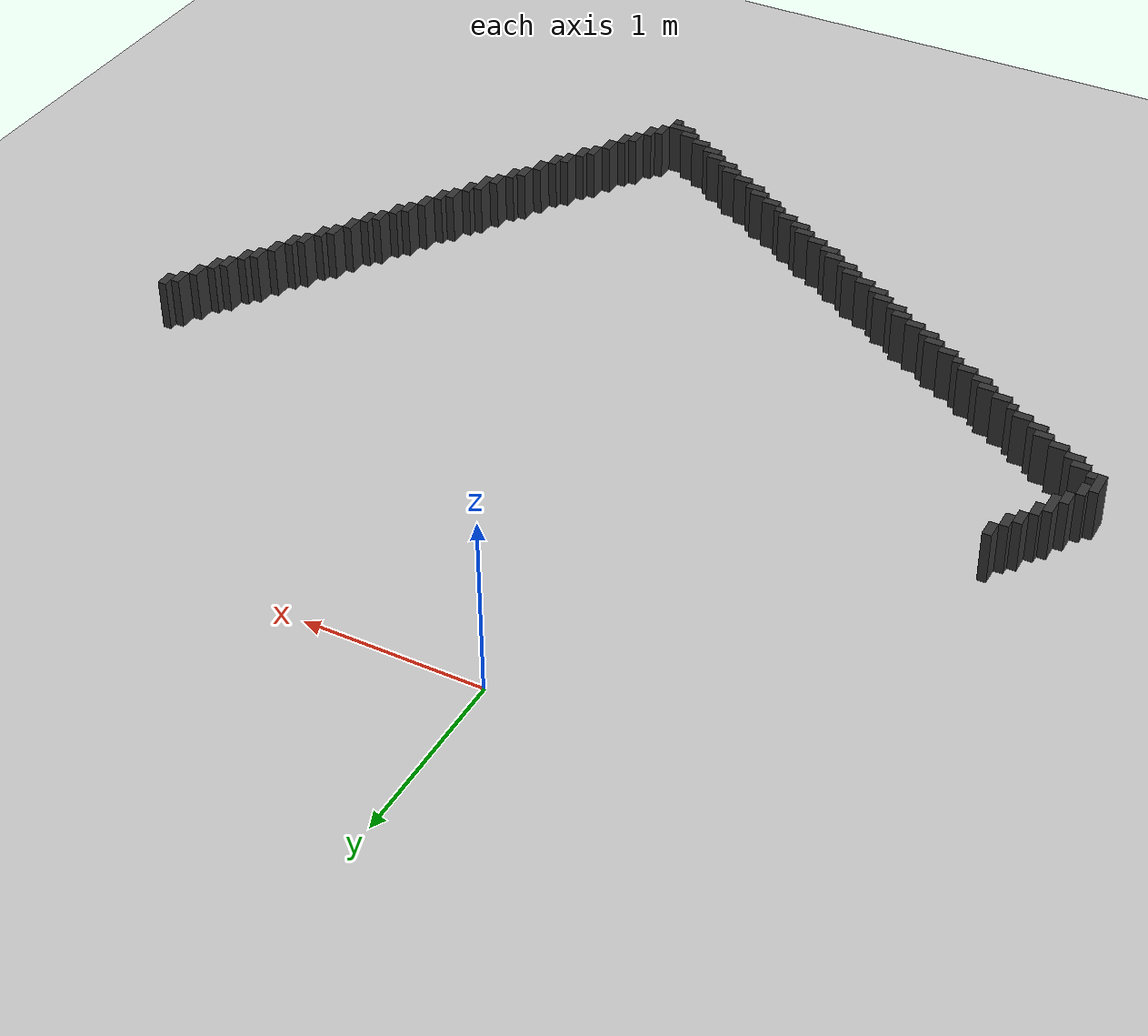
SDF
<sdf version="1.7">
 <world name="mapa_mundo">
  <model name="ground_plane">
   <static>true</static>
   <link name="link">
    <collision name="collision">
     <geometry><plane><normal>0 0 1</normal><size>10 10</size></plane></geometry>
     <surface><friction><ode><mu>100</mu><mu2>50</mu2></ode></friction></surface>
    </collision>
    <visual name="visual">
     <geometry><plane><normal>0 0 1</normal><size>10 10</size></plane></geometry>
     <material>
      <ambient>0.8 0.8 0.8 1</ambient>
      <diffuse>0.8 0.8 0.8 1</diffuse>
      <specular>0.8 0.8 0.8 1</specular>
     </material>
    </visual>
   </link>
  </model>
  <model name="wall_257">
   <static>true</static>
   <link name="link">
    <collision name="collision"><geometry><box><size>0.05 0.1 0.3</size></box></geometry></collision>
    <visual name="visual">
     <geometry><box><size>0.05 0.1 0.3</size></box></geometry>
     <material><ambient>0.2 0.2 0.2 1</ambient><diffuse>0.2 0.2 0.2 1</diffuse></material>
    </visual>
    <pose>3.0250000000000004 -1.75 0.15 0 0 0</pose>
   </link>
  </model>
  <model name="wall_258">
   <static>true</static>
   <link name="link">
    <collision name="collision"><geometry><box><size>0.05 0.1 0.3</size></box></geometry></collision>
    <visual name="visual">
     <geometry><box><size>0.05 0.1 0.3</size></box></geometry>
     <material><ambient>0.2 0.2 0.2 1</ambient><diffuse>0.2 0.2 0.2 1</diffuse></material>
    </visual>
    <pose>2.975 -1.8 0.15 0 0 0</pose>
   </link>
  </model>
  <model name="wall_259">
   <static>true</static>
   <link name="link">
    <collision name="collision"><geometry><box><size>0.05 0.1 0.3</size></box></geometry></collision>
    <visual name="visual">
     <geometry><box><size>0.05 0.1 0.3</size></box></geometry>
     <material><ambient>0.2 0.2 0.2 1</ambient><diffuse>0.2 0.2 0.2 1</diffuse></material>
    </visual>
    <pose>-1.7750000000000001 -1.85 0.15 0 0 0</pose>
   </link>
  </model>
  <model name="wall_260">
   <static>true</static>
   <link name="link">
    <collision name="collision"><geometry><box><size>0.05 0.1 0.3</size></box></geometry></collision>
    <visual name="visual">
     <geometry><box><size>0.05 0.1 0.3</size></box></geometry>
     <material><ambient>0.2 0.2 0.2 1</ambient><diffuse>0.2 0.2 0.2 1</diffuse></material>
    </visual>
    <pose>2.9250000000000003 -1.9000000000000001 0.15 0 0 0</pose>
   </link>
  </model>
  <model name="wall_261">
   <static>true</static>
   <link name="link">
    <collision name="collision"><geometry><box><size>0.05 0.1 0.3</size></box></geometry></collision>
    <visual name="visual">
     <geometry><box><size>0.05 0.1 0.3</size></box></geometry>
     <material><ambient>0.2 0.2 0.2 1</ambient><diffuse>0.2 0.2 0.2 1</diffuse></material>
    </visual>
    <pose>-1.8250000000000002 -1.9500000000000002 0.15 0 0 0</pose>
   </link>
  </model>
  <model name="wall_262">
   <static>true</static>
   <link name="link">
    <collision name="collision"><geometry><box><size>0.05 0.1 0.3</size></box></geometry></collision>
    <visual name="visual">
     <geometry><box><size>0.05 0.1 0.3</size></box></geometry>
     <material><ambient>0.2 0.2 0.2 1</ambient><diffuse>0.2 0.2 0.2 1</diffuse></material>
    </visual>
    <pose>-1.875 -2.0 0.15 0 0 0</pose>
   </link>
  </model>
  <model name="wall_263">
   <static>true</static>
   <link name="link">
    <collision name="collision"><geometry><box><size>0.05 0.1 0.3</size></box></geometry></collision>
    <visual name="visual">
     <geometry><box><size>0.05 0.1 0.3</size></box></geometry>
     <material><ambient>0.2 0.2 0.2 1</ambient><diffuse>0.2 0.2 0.2 1</diffuse></material>
    </visual>
    <pose>2.875 -2.0 0.15 0 0 0</pose>
   </link>
  </model>
  <model name="wall_264">
   <static>true</static>
   <link name="link">
    <collision name="collision"><geometry><box><size>0.05 0.1 0.3</size></box></geometry></collision>
    <visual name="visual">
     <geometry><box><size>0.05 0.1 0.3</size></box></geometry>
     <material><ambient>0.2 0.2 0.2 1</ambient><diffuse>0.2 0.2 0.2 1</diffuse></material>
    </visual>
    <pose>2.825 -2.0500000000000003 0.15 0 0 0</pose>
   </link>
  </model>
  <model name="wall_265">
   <static>true</static>
   <link name="link">
    <collision name="collision"><geometry><box><size>0.05 0.1 0.3</size></box></geometry></collision>
    <visual name="visual">
     <geometry><box><size>0.05 0.1 0.3</size></box></geometry>
     <material><ambient>0.2 0.2 0.2 1</ambient><diffuse>0.2 0.2 0.2 1</diffuse></material>
    </visual>
    <pose>-1.925 -2.1 0.15 0 0 0</pose>
   </link>
  </model>
  <model name="wall_266">
   <static>true</static>
   <link name="link">
    <collision name="collision">
     <geometry><box><size>0.05 0.15000000000000002 0.3</size></box></geometry>
    </collision>
    <visual name="visual">
     <geometry><box><size>0.05 0.15000000000000002 0.3</size></box></geometry>
     <material><ambient>0.2 0.2 0.2 1</ambient><diffuse>0.2 0.2 0.2 1</diffuse></material>
    </visual>
    <pose>-1.975 -2.1750000000000003 0.15 0 0 0</pose>
   </link>
  </model>
  <model name="wall_267">
   <static>true</static>
   <link name="link">
    <collision name="collision"><geometry><box><size>0.05 0.1 0.3</size></box></geometry></collision>
    <visual name="visual">
     <geometry><box><size>0.05 0.1 0.3</size></box></geometry>
     <material><ambient>0.2 0.2 0.2 1</ambient><diffuse>0.2 0.2 0.2 1</diffuse></material>
    </visual>
    <pose>2.7750000000000004 -2.15 0.15 0 0 0</pose>
   </link>
  </model>
  <model name="wall_268">
   <static>true</static>
   <link name="link">
    <collision name="collision"><geometry><box><size>0.05 0.1 0.3</size></box></geometry></collision>
    <visual name="visual">
     <geometry><box><size>0.05 0.1 0.3</size></box></geometry>
     <material><ambient>0.2 0.2 0.2 1</ambient><diffuse>0.2 0.2 0.2 1</diffuse></material>
    </visual>
    <pose>2.725 -2.2 0.15 0 0 0</pose>
   </link>
  </model>
  <model name="wall_269">
   <static>true</static>
   <link name="link">
    <collision name="collision"><geometry><box><size>0.05 0.1 0.3</size></box></geometry></collision>
    <visual name="visual">
     <geometry><box><size>0.05 0.1 0.3</size></box></geometry>
     <material><ambient>0.2 0.2 0.2 1</ambient><diffuse>0.2 0.2 0.2 1</diffuse></material>
    </visual>
    <pose>-2.025 -2.25 0.15 0 0 0</pose>
   </link>
  </model>
  <model name="wall_270">
   <static>true</static>
   <link name="link">
    <collision name="collision"><geometry><box><size>0.05 0.1 0.3</size></box></geometry></collision>
    <visual name="visual">
     <geometry><box><size>0.05 0.1 0.3</size></box></geometry>
     <material><ambient>0.2 0.2 0.2 1</ambient><diffuse>0.2 0.2 0.2 1</diffuse></material>
    </visual>
    <pose>2.6750000000000003 -2.3000000000000003 0.15 0 0 0</pose>
   </link>
  </model>
  <model name="wall_271">
   <static>true</static>
   <link name="link">
    <collision name="collision"><geometry><box><size>0.05 0.1 0.3</size></box></geometry></collision>
    <visual name="visual">
     <geometry><box><size>0.05 0.1 0.3</size></box></geometry>
     <material><ambient>0.2 0.2 0.2 1</ambient><diffuse>0.2 0.2 0.2 1</diffuse></material>
    </visual>
    <pose>-2.075 -2.35 0.15 0 0 0</pose>
   </link>
  </model>
  <model name="wall_272">
   <static>true</static>
   <link name="link">
    <collision name="collision">
     <geometry><box><size>0.05 0.15000000000000002 0.3</size></box></geometry>
    </collision>
    <visual name="visual">
     <geometry><box><size>0.05 0.15000000000000002 0.3</size></box></geometry>
     <material><ambient>0.2 0.2 0.2 1</ambient><diffuse>0.2 0.2 0.2 1</diffuse></material>
    </visual>
    <pose>-2.125 -2.4250000000000003 0.15 0 0 0</pose>
   </link>
  </model>
  <model name="wall_273">
   <static>true</static>
   <link name="link">
    <collision name="collision"><geometry><box><size>0.05 0.1 0.3</size></box></geometry></collision>
    <visual name="visual">
     <geometry><box><size>0.05 0.1 0.3</size></box></geometry>
     <material><ambient>0.2 0.2 0.2 1</ambient><diffuse>0.2 0.2 0.2 1</diffuse></material>
    </visual>
    <pose>2.625 -2.4000000000000004 0.15 0 0 0</pose>
   </link>
  </model>
  <model name="wall_274">
   <static>true</static>
   <link name="link">
    <collision name="collision"><geometry><box><size>0.05 0.1 0.3</size></box></geometry></collision>
    <visual name="visual">
     <geometry><box><size>0.05 0.1 0.3</size></box></geometry>
     <material><ambient>0.2 0.2 0.2 1</ambient><diffuse>0.2 0.2 0.2 1</diffuse></material>
    </visual>
    <pose>2.575 -2.45 0.15 0 0 0</pose>
   </link>
  </model>
  <model name="wall_275">
   <static>true</static>
   <link name="link">
    <collision name="collision"><geometry><box><size>0.05 0.05 0.3</size></box></geometry></collision>
    <visual name="visual">
     <geometry><box><size>0.05 0.05 0.3</size></box></geometry>
     <material><ambient>0.2 0.2 0.2 1</ambient><diffuse>0.2 0.2 0.2 1</diffuse></material>
    </visual>
    <pose>-2.075 -2.475 0.15 0 0 0</pose>
   </link>
  </model>
  <model name="wall_276">
   <static>true</static>
   <link name="link">
    <collision name="collision"><geometry><box><size>0.1 0.05 0.3</size></box></geometry></collision>
    <visual name="visual">
     <geometry><box><size>0.1 0.05 0.3</size></box></geometry>
     <material><ambient>0.2 0.2 0.2 1</ambient><diffuse>0.2 0.2 0.2 1</diffuse></material>
    </visual>
    <pose>-2.0 -2.5250000000000004 0.15 0 0 0</pose>
   </link>
  </model>
  <model name="wall_277">
   <static>true</static>
   <link name="link">
    <collision name="collision"><geometry><box><size>0.05 0.1 0.3</size></box></geometry></collision>
    <visual name="visual">
     <geometry><box><size>0.05 0.1 0.3</size></box></geometry>
     <material><ambient>0.2 0.2 0.2 1</ambient><diffuse>0.2 0.2 0.2 1</diffuse></material>
    </visual>
    <pose>2.5250000000000004 -2.5500000000000003 0.15 0 0 0</pose>
   </link>
  </model>
  <model name="wall_278">
   <static>true</static>
   <link name="link">
    <collision name="collision"><geometry><box><size>0.1 0.05 0.3</size></box></geometry></collision>
    <visual name="visual">
     <geometry><box><size>0.1 0.05 0.3</size></box></geometry>
     <material><ambient>0.2 0.2 0.2 1</ambient><diffuse>0.2 0.2 0.2 1</diffuse></material>
    </visual>
    <pose>-1.9500000000000002 -2.575 0.15 0 0 0</pose>
   </link>
  </model>
  <model name="wall_279">
   <static>true</static>
   <link name="link">
    <collision name="collision"><geometry><box><size>0.05 0.1 0.3</size></box></geometry></collision>
    <visual name="visual">
     <geometry><box><size>0.05 0.1 0.3</size></box></geometry>
     <material><ambient>0.2 0.2 0.2 1</ambient><diffuse>0.2 0.2 0.2 1</diffuse></material>
    </visual>
    <pose>2.475 -2.6 0.15 0 0 0</pose>
   </link>
  </model>
  <model name="wall_280">
   <static>true</static>
   <link name="link">
    <collision name="collision"><geometry><box><size>0.1 0.05 0.3</size></box></geometry></collision>
    <visual name="visual">
     <geometry><box><size>0.1 0.05 0.3</size></box></geometry>
     <material><ambient>0.2 0.2 0.2 1</ambient><diffuse>0.2 0.2 0.2 1</diffuse></material>
    </visual>
    <pose>-1.85 -2.625 0.15 0 0 0</pose>
   </link>
  </model>
  <model name="wall_281">
   <static>true</static>
   <link name="link">
    <collision name="collision"><geometry><box><size>0.1 0.05 0.3</size></box></geometry></collision>
    <visual name="visual">
     <geometry><box><size>0.1 0.05 0.3</size></box></geometry>
     <material><ambient>0.2 0.2 0.2 1</ambient><diffuse>0.2 0.2 0.2 1</diffuse></material>
    </visual>
    <pose>-1.75 -2.6750000000000003 0.15 0 0 0</pose>
   </link>
  </model>
  <model name="wall_282">
   <static>true</static>
   <link name="link">
    <collision name="collision"><geometry><box><size>0.05 0.1 0.3</size></box></geometry></collision>
    <visual name="visual">
     <geometry><box><size>0.05 0.1 0.3</size></box></geometry>
     <material><ambient>0.2 0.2 0.2 1</ambient><diffuse>0.2 0.2 0.2 1</diffuse></material>
    </visual>
    <pose>2.4250000000000003 -2.7 0.15 0 0 0</pose>
   </link>
  </model>
  <model name="wall_283">
   <static>true</static>
   <link name="link">
    <collision name="collision"><geometry><box><size>0.1 0.05 0.3</size></box></geometry></collision>
    <visual name="visual">
     <geometry><box><size>0.1 0.05 0.3</size></box></geometry>
     <material><ambient>0.2 0.2 0.2 1</ambient><diffuse>0.2 0.2 0.2 1</diffuse></material>
    </visual>
    <pose>-1.7000000000000002 -2.725 0.15 0 0 0</pose>
   </link>
  </model>
  <model name="wall_284">
   <static>true</static>
   <link name="link">
    <collision name="collision"><geometry><box><size>0.1 0.05 0.3</size></box></geometry></collision>
    <visual name="visual">
     <geometry><box><size>0.1 0.05 0.3</size></box></geometry>
     <material><ambient>0.2 0.2 0.2 1</ambient><diffuse>0.2 0.2 0.2 1</diffuse></material>
    </visual>
    <pose>-1.6 -2.7750000000000004 0.15 0 0 0</pose>
   </link>
  </model>
  <model name="wall_285">
   <static>true</static>
   <link name="link">
    <collision name="collision"><geometry><box><size>0.05 0.1 0.3</size></box></geometry></collision>
    <visual name="visual">
     <geometry><box><size>0.05 0.1 0.3</size></box></geometry>
     <material><ambient>0.2 0.2 0.2 1</ambient><diffuse>0.2 0.2 0.2 1</diffuse></material>
    </visual>
    <pose>2.375 -2.8000000000000003 0.15 0 0 0</pose>
   </link>
  </model>
  <model name="wall_286">
   <static>true</static>
   <link name="link">
    <collision name="collision"><geometry><box><size>0.05 0.05 0.3</size></box></geometry></collision>
    <visual name="visual">
     <geometry><box><size>0.05 0.05 0.3</size></box></geometry>
     <material><ambient>0.2 0.2 0.2 1</ambient><diffuse>0.2 0.2 0.2 1</diffuse></material>
    </visual>
    <pose>-1.5250000000000001 -2.825 0.15 0 0 0</pose>
   </link>
  </model>
  <model name="wall_287">
   <static>true</static>
   <link name="link">
    <collision name="collision"><geometry><box><size>0.05 0.1 0.3</size></box></geometry></collision>
    <visual name="visual">
     <geometry><box><size>0.05 0.1 0.3</size></box></geometry>
     <material><ambient>0.2 0.2 0.2 1</ambient><diffuse>0.2 0.2 0.2 1</diffuse></material>
    </visual>
    <pose>2.325 -2.85 0.15 0 0 0</pose>
   </link>
  </model>
  <model name="wall_288">
   <static>true</static>
   <link name="link">
    <collision name="collision"><geometry><box><size>0.1 0.05 0.3</size></box></geometry></collision>
    <visual name="visual">
     <geometry><box><size>0.1 0.05 0.3</size></box></geometry>
     <material><ambient>0.2 0.2 0.2 1</ambient><diffuse>0.2 0.2 0.2 1</diffuse></material>
    </visual>
    <pose>-1.4500000000000002 -2.875 0.15 0 0 0</pose>
   </link>
  </model>
  <model name="wall_289">
   <static>true</static>
   <link name="link">
    <collision name="collision"><geometry><box><size>0.1 0.05 0.3</size></box></geometry></collision>
    <visual name="visual">
     <geometry><box><size>0.1 0.05 0.3</size></box></geometry>
     <material><ambient>0.2 0.2 0.2 1</ambient><diffuse>0.2 0.2 0.2 1</diffuse></material>
    </visual>
    <pose>-1.35 -2.9250000000000003 0.15 0 0 0</pose>
   </link>
  </model>
  <model name="wall_290">
   <static>true</static>
   <link name="link">
    <collision name="collision"><geometry><box><size>0.05 0.1 0.3</size></box></geometry></collision>
    <visual name="visual">
     <geometry><box><size>0.05 0.1 0.3</size></box></geometry>
     <material><ambient>0.2 0.2 0.2 1</ambient><diffuse>0.2 0.2 0.2 1</diffuse></material>
    </visual>
    <pose>2.275 -2.95 0.15 0 0 0</pose>
   </link>
  </model>
  <model name="wall_291">
   <static>true</static>
   <link name="link">
    <collision name="collision"><geometry><box><size>0.1 0.05 0.3</size></box></geometry></collision>
    <visual name="visual">
     <geometry><box><size>0.1 0.05 0.3</size></box></geometry>
     <material><ambient>0.2 0.2 0.2 1</ambient><diffuse>0.2 0.2 0.2 1</diffuse></material>
    </visual>
    <pose>-1.3 -2.975 0.15 0 0 0</pose>
   </link>
  </model>
  <model name="wall_292">
   <static>true</static>
   <link name="link">
    <collision name="collision"><geometry><box><size>0.05 0.1 0.3</size></box></geometry></collision>
    <visual name="visual">
     <geometry><box><size>0.05 0.1 0.3</size></box></geometry>
     <material><ambient>0.2 0.2 0.2 1</ambient><diffuse>0.2 0.2 0.2 1</diffuse></material>
    </visual>
    <pose>2.225 -3.0 0.15 0 0 0</pose>
   </link>
  </model>
  <model name="wall_293">
   <static>true</static>
   <link name="link">
    <collision name="collision"><geometry><box><size>0.1 0.05 0.3</size></box></geometry></collision>
    <visual name="visual">
     <geometry><box><size>0.1 0.05 0.3</size></box></geometry>
     <material><ambient>0.2 0.2 0.2 1</ambient><diffuse>0.2 0.2 0.2 1</diffuse></material>
    </visual>
    <pose>-1.2000000000000002 -3.0250000000000004 0.15 0 0 0</pose>
   </link>
  </model>
  <model name="wall_294">
   <static>true</static>
   <link name="link">
    <collision name="collision"><geometry><box><size>0.05 0.05 0.3</size></box></geometry></collision>
    <visual name="visual">
     <geometry><box><size>0.05 0.05 0.3</size></box></geometry>
     <material><ambient>0.2 0.2 0.2 1</ambient><diffuse>0.2 0.2 0.2 1</diffuse></material>
    </visual>
    <pose>-1.125 -3.075 0.15 0 0 0</pose>
   </link>
  </model>
  <model name="wall_295">
   <static>true</static>
   <link name="link">
    <collision name="collision"><geometry><box><size>0.05 0.1 0.3</size></box></geometry></collision>
    <visual name="visual">
     <geometry><box><size>0.05 0.1 0.3</size></box></geometry>
     <material><ambient>0.2 0.2 0.2 1</ambient><diffuse>0.2 0.2 0.2 1</diffuse></material>
    </visual>
    <pose>2.1750000000000003 -3.1 0.15 0 0 0</pose>
   </link>
  </model>
  <model name="wall_296">
   <static>true</static>
   <link name="link">
    <collision name="collision"><geometry><box><size>0.1 0.05 0.3</size></box></geometry></collision>
    <visual name="visual">
     <geometry><box><size>0.1 0.05 0.3</size></box></geometry>
     <material><ambient>0.2 0.2 0.2 1</ambient><diffuse>0.2 0.2 0.2 1</diffuse></material>
    </visual>
    <pose>-1.05 -3.125 0.15 0 0 0</pose>
   </link>
  </model>
  <model name="wall_297">
   <static>true</static>
   <link name="link">
    <collision name="collision"><geometry><box><size>0.1 0.05 0.3</size></box></geometry></collision>
    <visual name="visual">
     <geometry><box><size>0.1 0.05 0.3</size></box></geometry>
     <material><ambient>0.2 0.2 0.2 1</ambient><diffuse>0.2 0.2 0.2 1</diffuse></material>
    </visual>
    <pose>-0.9500000000000001 -3.1750000000000003 0.15 0 0 0</pose>
   </link>
  </model>
  <model name="wall_298">
   <static>true</static>
   <link name="link">
    <collision name="collision"><geometry><box><size>0.05 0.1 0.3</size></box></geometry></collision>
    <visual name="visual">
     <geometry><box><size>0.05 0.1 0.3</size></box></geometry>
     <material><ambient>0.2 0.2 0.2 1</ambient><diffuse>0.2 0.2 0.2 1</diffuse></material>
    </visual>
    <pose>2.125 -3.2 0.15 0 0 0</pose>
   </link>
  </model>
  <model name="wall_299">
   <static>true</static>
   <link name="link">
    <collision name="collision"><geometry><box><size>0.1 0.05 0.3</size></box></geometry></collision>
    <visual name="visual">
     <geometry><box><size>0.1 0.05 0.3</size></box></geometry>
     <material><ambient>0.2 0.2 0.2 1</ambient><diffuse>0.2 0.2 0.2 1</diffuse></material>
    </visual>
    <pose>-0.9 -3.225 0.15 0 0 0</pose>
   </link>
  </model>
  <model name="wall_300">
   <static>true</static>
   <link name="link">
    <collision name="collision"><geometry><box><size>0.05 0.1 0.3</size></box></geometry></collision>
    <visual name="visual">
     <geometry><box><size>0.05 0.1 0.3</size></box></geometry>
     <material><ambient>0.2 0.2 0.2 1</ambient><diffuse>0.2 0.2 0.2 1</diffuse></material>
    </visual>
    <pose>2.075 -3.25 0.15 0 0 0</pose>
   </link>
  </model>
  <model name="wall_301">
   <static>true</static>
   <link name="link">
    <collision name="collision"><geometry><box><size>0.1 0.05 0.3</size></box></geometry></collision>
    <visual name="visual">
     <geometry><box><size>0.1 0.05 0.3</size></box></geometry>
     <material><ambient>0.2 0.2 0.2 1</ambient><diffuse>0.2 0.2 0.2 1</diffuse></material>
    </visual>
    <pose>-0.8 -3.2750000000000004 0.15 0 0 0</pose>
   </link>
  </model>
  <model name="wall_302">
   <static>true</static>
   <link name="link">
    <collision name="collision"><geometry><box><size>0.1 0.05 0.3</size></box></geometry></collision>
    <visual name="visual">
     <geometry><box><size>0.1 0.05 0.3</size></box></geometry>
     <material><ambient>0.2 0.2 0.2 1</ambient><diffuse>0.2 0.2 0.2 1</diffuse></material>
    </visual>
    <pose>-0.7000000000000001 -3.325 0.15 0 0 0</pose>
   </link>
  </model>
  <model name="wall_303">
   <static>true</static>
   <link name="link">
    <collision name="collision"><geometry><box><size>0.05 0.1 0.3</size></box></geometry></collision>
    <visual name="visual">
     <geometry><box><size>0.05 0.1 0.3</size></box></geometry>
     <material><ambient>0.2 0.2 0.2 1</ambient><diffuse>0.2 0.2 0.2 1</diffuse></material>
    </visual>
    <pose>2.025 -3.35 0.15 0 0 0</pose>
   </link>
  </model>
  <model name="wall_304">
   <static>true</static>
   <link name="link">
    <collision name="collision"><geometry><box><size>0.1 0.05 0.3</size></box></geometry></collision>
    <visual name="visual">
     <geometry><box><size>0.1 0.05 0.3</size></box></geometry>
     <material><ambient>0.2 0.2 0.2 1</ambient><diffuse>0.2 0.2 0.2 1</diffuse></material>
    </visual>
    <pose>-0.65 -3.375 0.15 0 0 0</pose>
   </link>
  </model>
  <model name="wall_305">
   <static>true</static>
   <link name="link">
    <collision name="collision">
     <geometry><box><size>0.05 0.15000000000000002 0.3</size></box></geometry>
    </collision>
    <visual name="visual">
     <geometry><box><size>0.05 0.15000000000000002 0.3</size></box></geometry>
     <material><ambient>0.2 0.2 0.2 1</ambient><diffuse>0.2 0.2 0.2 1</diffuse></material>
    </visual>
    <pose>1.975 -3.4250000000000003 0.15 0 0 0</pose>
   </link>
  </model>
  <model name="wall_306">
   <static>true</static>
   <link name="link">
    <collision name="collision"><geometry><box><size>0.1 0.05 0.3</size></box></geometry></collision>
    <visual name="visual">
     <geometry><box><size>0.1 0.05 0.3</size></box></geometry>
     <material><ambient>0.2 0.2 0.2 1</ambient><diffuse>0.2 0.2 0.2 1</diffuse></material>
    </visual>
    <pose>-0.55 -3.4250000000000003 0.15 0 0 0</pose>
   </link>
  </model>
  <model name="wall_307">
   <static>true</static>
   <link name="link">
    <collision name="collision"><geometry><box><size>0.1 0.05 0.3</size></box></geometry></collision>
    <visual name="visual">
     <geometry><box><size>0.1 0.05 0.3</size></box></geometry>
     <material><ambient>0.2 0.2 0.2 1</ambient><diffuse>0.2 0.2 0.2 1</diffuse></material>
    </visual>
    <pose>-0.5 -3.475 0.15 0 0 0</pose>
   </link>
  </model>
  <model name="wall_308">
   <static>true</static>
   <link name="link">
    <collision name="collision"><geometry><box><size>0.05 0.1 0.3</size></box></geometry></collision>
    <visual name="visual">
     <geometry><box><size>0.05 0.1 0.3</size></box></geometry>
     <material><ambient>0.2 0.2 0.2 1</ambient><diffuse>0.2 0.2 0.2 1</diffuse></material>
    </visual>
    <pose>1.925 -3.5 0.15 0 0 0</pose>
   </link>
  </model>
  <model name="wall_309">
   <static>true</static>
   <link name="link">
    <collision name="collision"><geometry><box><size>0.1 0.05 0.3</size></box></geometry></collision>
    <visual name="visual">
     <geometry><box><size>0.1 0.05 0.3</size></box></geometry>
     <material><ambient>0.2 0.2 0.2 1</ambient><diffuse>0.2 0.2 0.2 1</diffuse></material>
    </visual>
    <pose>-0.4 -3.5250000000000004 0.15 0 0 0</pose>
   </link>
  </model>
  <model name="wall_310">
   <static>true</static>
   <link name="link">
    <collision name="collision"><geometry><box><size>0.1 0.05 0.3</size></box></geometry></collision>
    <visual name="visual">
     <geometry><box><size>0.1 0.05 0.3</size></box></geometry>
     <material><ambient>0.2 0.2 0.2 1</ambient><diffuse>0.2 0.2 0.2 1</diffuse></material>
    </visual>
    <pose>-0.30000000000000004 -3.575 0.15 0 0 0</pose>
   </link>
  </model>
  <model name="wall_311">
   <static>true</static>
   <link name="link">
    <collision name="collision"><geometry><box><size>0.05 0.1 0.3</size></box></geometry></collision>
    <visual name="visual">
     <geometry><box><size>0.05 0.1 0.3</size></box></geometry>
     <material><ambient>0.2 0.2 0.2 1</ambient><diffuse>0.2 0.2 0.2 1</diffuse></material>
    </visual>
    <pose>1.875 -3.6 0.15 0 0 0</pose>
   </link>
  </model>
  <model name="wall_312">
   <static>true</static>
   <link name="link">
    <collision name="collision"><geometry><box><size>0.1 0.05 0.3</size></box></geometry></collision>
    <visual name="visual">
     <geometry><box><size>0.1 0.05 0.3</size></box></geometry>
     <material><ambient>0.2 0.2 0.2 1</ambient><diffuse>0.2 0.2 0.2 1</diffuse></material>
    </visual>
    <pose>-0.25 -3.625 0.15 0 0 0</pose>
   </link>
  </model>
  <model name="wall_313">
   <static>true</static>
   <link name="link">
    <collision name="collision"><geometry><box><size>0.05 0.1 0.3</size></box></geometry></collision>
    <visual name="visual">
     <geometry><box><size>0.05 0.1 0.3</size></box></geometry>
     <material><ambient>0.2 0.2 0.2 1</ambient><diffuse>0.2 0.2 0.2 1</diffuse></material>
    </visual>
    <pose>1.8250000000000002 -3.6500000000000004 0.15 0 0 0</pose>
   </link>
  </model>
  <model name="wall_314">
   <static>true</static>
   <link name="link">
    <collision name="collision"><geometry><box><size>0.1 0.05 0.3</size></box></geometry></collision>
    <visual name="visual">
     <geometry><box><size>0.1 0.05 0.3</size></box></geometry>
     <material><ambient>0.2 0.2 0.2 1</ambient><diffuse>0.2 0.2 0.2 1</diffuse></material>
    </visual>
    <pose>-0.15000000000000002 -3.6750000000000003 0.15 0 0 0</pose>
   </link>
  </model>
  <model name="wall_315">
   <static>true</static>
   <link name="link">
    <collision name="collision"><geometry><box><size>0.1 0.05 0.3</size></box></geometry></collision>
    <visual name="visual">
     <geometry><box><size>0.1 0.05 0.3</size></box></geometry>
     <material><ambient>0.2 0.2 0.2 1</ambient><diffuse>0.2 0.2 0.2 1</diffuse></material>
    </visual>
    <pose>-0.1 -3.725 0.15 0 0 0</pose>
   </link>
  </model>
  <model name="wall_316">
   <static>true</static>
   <link name="link">
    <collision name="collision"><geometry><box><size>0.05 0.1 0.3</size></box></geometry></collision>
    <visual name="visual">
     <geometry><box><size>0.05 0.1 0.3</size></box></geometry>
     <material><ambient>0.2 0.2 0.2 1</ambient><diffuse>0.2 0.2 0.2 1</diffuse></material>
    </visual>
    <pose>1.7750000000000001 -3.75 0.15 0 0 0</pose>
   </link>
  </model>
  <model name="wall_317">
   <static>true</static>
   <link name="link">
    <collision name="collision"><geometry><box><size>0.1 0.05 0.3</size></box></geometry></collision>
    <visual name="visual">
     <geometry><box><size>0.1 0.05 0.3</size></box></geometry>
     <material><ambient>0.2 0.2 0.2 1</ambient><diffuse>0.2 0.2 0.2 1</diffuse></material>
    </visual>
    <pose>0.0 -3.7750000000000004 0.15 0 0 0</pose>
   </link>
  </model>
  <model name="wall_318">
   <static>true</static>
   <link name="link">
    <collision name="collision"><geometry><box><size>0.1 0.05 0.3</size></box></geometry></collision>
    <visual name="visual">
     <geometry><box><size>0.1 0.05 0.3</size></box></geometry>
     <material><ambient>0.2 0.2 0.2 1</ambient><diffuse>0.2 0.2 0.2 1</diffuse></material>
    </visual>
    <pose>0.1 -3.825 0.15 0 0 0</pose>
   </link>
  </model>
  <model name="wall_319">
   <static>true</static>
   <link name="link">
    <collision name="collision"><geometry><box><size>0.05 0.1 0.3</size></box></geometry></collision>
    <visual name="visual">
     <geometry><box><size>0.05 0.1 0.3</size></box></geometry>
     <material><ambient>0.2 0.2 0.2 1</ambient><diffuse>0.2 0.2 0.2 1</diffuse></material>
    </visual>
    <pose>1.725 -3.85 0.15 0 0 0</pose>
   </link>
  </model>
  <model name="wall_320">
   <static>true</static>
   <link name="link">
    <collision name="collision"><geometry><box><size>0.1 0.05 0.3</size></box></geometry></collision>
    <visual name="visual">
     <geometry><box><size>0.1 0.05 0.3</size></box></geometry>
     <material><ambient>0.2 0.2 0.2 1</ambient><diffuse>0.2 0.2 0.2 1</diffuse></material>
    </visual>
    <pose>0.15000000000000002 -3.875 0.15 0 0 0</pose>
   </link>
  </model>
  <model name="wall_321">
   <static>true</static>
   <link name="link">
    <collision name="collision"><geometry><box><size>0.05 0.1 0.3</size></box></geometry></collision>
    <visual name="visual">
     <geometry><box><size>0.05 0.1 0.3</size></box></geometry>
     <material><ambient>0.2 0.2 0.2 1</ambient><diffuse>0.2 0.2 0.2 1</diffuse></material>
    </visual>
    <pose>1.675 -3.9000000000000004 0.15 0 0 0</pose>
   </link>
  </model>
  <model name="wall_322">
   <static>true</static>
   <link name="link">
    <collision name="collision"><geometry><box><size>0.1 0.05 0.3</size></box></geometry></collision>
    <visual name="visual">
     <geometry><box><size>0.1 0.05 0.3</size></box></geometry>
     <material><ambient>0.2 0.2 0.2 1</ambient><diffuse>0.2 0.2 0.2 1</diffuse></material>
    </visual>
    <pose>0.25 -3.9250000000000003 0.15 0 0 0</pose>
   </link>
  </model>
  <model name="wall_323">
   <static>true</static>
   <link name="link">
    <collision name="collision"><geometry><box><size>0.05 0.05 0.3</size></box></geometry></collision>
    <visual name="visual">
     <geometry><box><size>0.05 0.05 0.3</size></box></geometry>
     <material><ambient>0.2 0.2 0.2 1</ambient><diffuse>0.2 0.2 0.2 1</diffuse></material>
    </visual>
    <pose>0.325 -3.975 0.15 0 0 0</pose>
   </link>
  </model>
  <model name="wall_324">
   <static>true</static>
   <link name="link">
    <collision name="collision"><geometry><box><size>0.05 0.1 0.3</size></box></geometry></collision>
    <visual name="visual">
     <geometry><box><size>0.05 0.1 0.3</size></box></geometry>
     <material><ambient>0.2 0.2 0.2 1</ambient><diffuse>0.2 0.2 0.2 1</diffuse></material>
    </visual>
    <pose>1.625 -4.0 0.15 0 0 0</pose>
   </link>
  </model>
  <model name="wall_325">
   <static>true</static>
   <link name="link">
    <collision name="collision"><geometry><box><size>0.1 0.05 0.3</size></box></geometry></collision>
    <visual name="visual">
     <geometry><box><size>0.1 0.05 0.3</size></box></geometry>
     <material><ambient>0.2 0.2 0.2 1</ambient><diffuse>0.2 0.2 0.2 1</diffuse></material>
    </visual>
    <pose>0.4 -4.025 0.15 0 0 0</pose>
   </link>
  </model>
  <model name="wall_326">
   <static>true</static>
   <link name="link">
    <collision name="collision"><geometry><box><size>0.05 0.1 0.3</size></box></geometry></collision>
    <visual name="visual">
     <geometry><box><size>0.05 0.1 0.3</size></box></geometry>
     <material><ambient>0.2 0.2 0.2 1</ambient><diffuse>0.2 0.2 0.2 1</diffuse></material>
    </visual>
    <pose>1.5750000000000002 -4.05 0.15 0 0 0</pose>
   </link>
  </model>
  <model name="wall_327">
   <static>true</static>
   <link name="link">
    <collision name="collision"><geometry><box><size>0.1 0.05 0.3</size></box></geometry></collision>
    <visual name="visual">
     <geometry><box><size>0.1 0.05 0.3</size></box></geometry>
     <material><ambient>0.2 0.2 0.2 1</ambient><diffuse>0.2 0.2 0.2 1</diffuse></material>
    </visual>
    <pose>0.5 -4.075 0.15 0 0 0</pose>
   </link>
  </model>
  <model name="wall_328">
   <static>true</static>
   <link name="link">
    <collision name="collision"><geometry><box><size>0.1 0.05 0.3</size></box></geometry></collision>
    <visual name="visual">
     <geometry><box><size>0.1 0.05 0.3</size></box></geometry>
     <material><ambient>0.2 0.2 0.2 1</ambient><diffuse>0.2 0.2 0.2 1</diffuse></material>
    </visual>
    <pose>0.55 -4.125 0.15 0 0 0</pose>
   </link>
  </model>
  <model name="wall_329">
   <static>true</static>
   <link name="link">
    <collision name="collision"><geometry><box><size>0.05 0.1 0.3</size></box></geometry></collision>
    <visual name="visual">
     <geometry><box><size>0.05 0.1 0.3</size></box></geometry>
     <material><ambient>0.2 0.2 0.2 1</ambient><diffuse>0.2 0.2 0.2 1</diffuse></material>
    </visual>
    <pose>1.5250000000000001 -4.15 0.15 0 0 0</pose>
   </link>
  </model>
  <model name="wall_330">
   <static>true</static>
   <link name="link">
    <collision name="collision"><geometry><box><size>0.1 0.05 0.3</size></box></geometry></collision>
    <visual name="visual">
     <geometry><box><size>0.1 0.05 0.3</size></box></geometry>
     <material><ambient>0.2 0.2 0.2 1</ambient><diffuse>0.2 0.2 0.2 1</diffuse></material>
    </visual>
    <pose>0.65 -4.175 0.15 0 0 0</pose>
   </link>
  </model>
  <model name="wall_331">
   <static>true</static>
   <link name="link">
    <collision name="collision"><geometry><box><size>0.1 0.05 0.3</size></box></geometry></collision>
    <visual name="visual">
     <geometry><box><size>0.1 0.05 0.3</size></box></geometry>
     <material><ambient>0.2 0.2 0.2 1</ambient><diffuse>0.2 0.2 0.2 1</diffuse></material>
    </visual>
    <pose>0.75 -4.2250000000000005 0.15 0 0 0</pose>
   </link>
  </model>
  <model name="wall_332">
   <static>true</static>
   <link name="link">
    <collision name="collision"><geometry><box><size>0.05 0.1 0.3</size></box></geometry></collision>
    <visual name="visual">
     <geometry><box><size>0.05 0.1 0.3</size></box></geometry>
     <material><ambient>0.2 0.2 0.2 1</ambient><diffuse>0.2 0.2 0.2 1</diffuse></material>
    </visual>
    <pose>1.475 -4.25 0.15 0 0 0</pose>
   </link>
  </model>
  <model name="wall_333">
   <static>true</static>
   <link name="link">
    <collision name="collision"><geometry><box><size>0.1 0.05 0.3</size></box></geometry></collision>
    <visual name="visual">
     <geometry><box><size>0.1 0.05 0.3</size></box></geometry>
     <material><ambient>0.2 0.2 0.2 1</ambient><diffuse>0.2 0.2 0.2 1</diffuse></material>
    </visual>
    <pose>0.8 -4.275 0.15 0 0 0</pose>
   </link>
  </model>
  <model name="wall_334">
   <static>true</static>
   <link name="link">
    <collision name="collision"><geometry><box><size>0.05 0.1 0.3</size></box></geometry></collision>
    <visual name="visual">
     <geometry><box><size>0.05 0.1 0.3</size></box></geometry>
     <material><ambient>0.2 0.2 0.2 1</ambient><diffuse>0.2 0.2 0.2 1</diffuse></material>
    </visual>
    <pose>1.425 -4.3 0.15 0 0 0</pose>
   </link>
  </model>
  <model name="wall_335">
   <static>true</static>
   <link name="link">
    <collision name="collision"><geometry><box><size>0.1 0.05 0.3</size></box></geometry></collision>
    <visual name="visual">
     <geometry><box><size>0.1 0.05 0.3</size></box></geometry>
     <material><ambient>0.2 0.2 0.2 1</ambient><diffuse>0.2 0.2 0.2 1</diffuse></material>
    </visual>
    <pose>0.9 -4.325 0.15 0 0 0</pose>
   </link>
  </model>
  <model name="wall_336">
   <static>true</static>
   <link name="link">
    <collision name="collision"><geometry><box><size>0.1 0.05 0.3</size></box></geometry></collision>
    <visual name="visual">
     <geometry><box><size>0.1 0.05 0.3</size></box></geometry>
     <material><ambient>0.2 0.2 0.2 1</ambient><diffuse>0.2 0.2 0.2 1</diffuse></material>
    </visual>
    <pose>0.9500000000000001 -4.375 0.15 0 0 0</pose>
   </link>
  </model>
  <model name="wall_337">
   <static>true</static>
   <link name="link">
    <collision name="collision"><geometry><box><size>0.05 0.1 0.3</size></box></geometry></collision>
    <visual name="visual">
     <geometry><box><size>0.05 0.1 0.3</size></box></geometry>
     <material><ambient>0.2 0.2 0.2 1</ambient><diffuse>0.2 0.2 0.2 1</diffuse></material>
    </visual>
    <pose>1.375 -4.4 0.15 0 0 0</pose>
   </link>
  </model>
  <model name="wall_338">
   <static>true</static>
   <link name="link">
    <collision name="collision"><geometry><box><size>0.1 0.05 0.3</size></box></geometry></collision>
    <visual name="visual">
     <geometry><box><size>0.1 0.05 0.3</size></box></geometry>
     <material><ambient>0.2 0.2 0.2 1</ambient><diffuse>0.2 0.2 0.2 1</diffuse></material>
    </visual>
    <pose>1.05 -4.425 0.15 0 0 0</pose>
   </link>
  </model>
  <model name="wall_339">
   <static>true</static>
   <link name="link">
    <collision name="collision"><geometry><box><size>0.05 0.1 0.3</size></box></geometry></collision>
    <visual name="visual">
     <geometry><box><size>0.05 0.1 0.3</size></box></geometry>
     <material><ambient>0.2 0.2 0.2 1</ambient><diffuse>0.2 0.2 0.2 1</diffuse></material>
    </visual>
    <pose>1.3250000000000002 -4.45 0.15 0 0 0</pose>
   </link>
  </model>
  <model name="wall_340">
   <static>true</static>
   <link name="link">
    <collision name="collision"><geometry><box><size>0.1 0.05 0.3</size></box></geometry></collision>
    <visual name="visual">
     <geometry><box><size>0.1 0.05 0.3</size></box></geometry>
     <material><ambient>0.2 0.2 0.2 1</ambient><diffuse>0.2 0.2 0.2 1</diffuse></material>
    </visual>
    <pose>1.1500000000000001 -4.4750000000000005 0.15 0 0 0</pose>
   </link>
  </model>
  <model name="wall_341">
   <static>true</static>
   <link name="link">
    <collision name="collision">
     <geometry><box><size>0.15000000000000002 0.05 0.3</size></box></geometry>
    </collision>
    <visual name="visual">
     <geometry><box><size>0.15000000000000002 0.05 0.3</size></box></geometry>
     <material><ambient>0.2 0.2 0.2 1</ambient><diffuse>0.2 0.2 0.2 1</diffuse></material>
    </visual>
    <pose>1.225 -4.525 0.15 0 0 0</pose>
   </link>
  </model>
  <model name="wall_342">
   <static>true</static>
   <link name="link">
    <collision name="collision"><geometry><box><size>0.05 0.05 0.3</size></box></geometry></collision>
    <visual name="visual">
     <geometry><box><size>0.05 0.05 0.3</size></box></geometry>
     <material><ambient>0.2 0.2 0.2 1</ambient><diffuse>0.2 0.2 0.2 1</diffuse></material>
    </visual>
    <pose>1.2750000000000001 -4.575 0.15 0 0 0</pose>
   </link>
  </model>
 </world>
</sdf>
